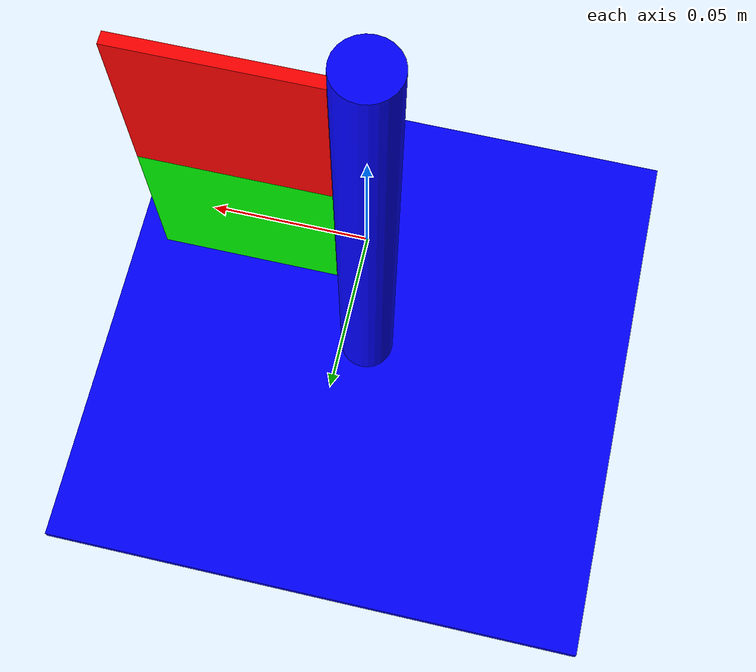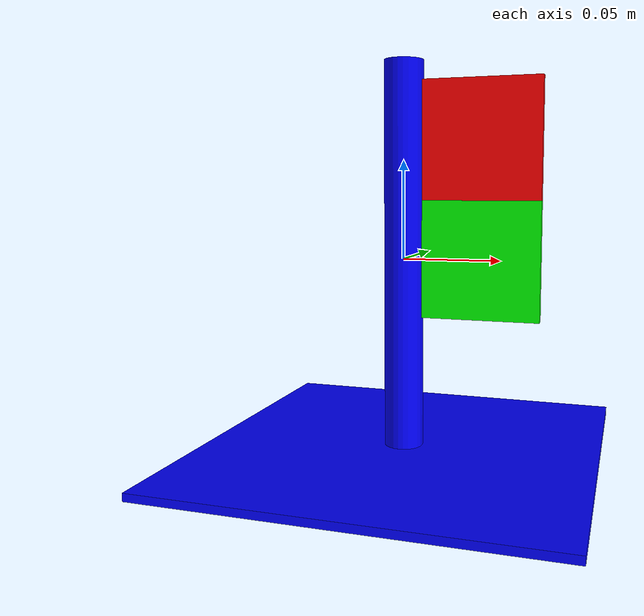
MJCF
<mujoco model="spinning_pole">
  <worldbody>
    <body>
      <body name="collision">
        <geom name="spinningpole_base" euler="0 0 0" pos="0.0 0 -0.1" size="0.1 0.1 0.002"  solimp="0.998 0.998 0.001" solref="0.02 1" density="1000"  type="box" friction="0.95 0.3 0.2" rgba="0 0 1 1"  group="1" contype="1" conaffinity="1" condim="4"/>
        <geom name="spinningpole" euler="0 0 0" pos="0 0 0" size="0.01 0.1" solimp="0.998 0.998 0.001" solref="0.02 1" density="10000000"  type="cylinder" friction="0.95 0.3 0.2" rgba="0 0 1 1"  group="1" contype="1" conaffinity="1" condim="4"/>
        <body>
          <joint axis="0 0 1" name="hinge" pos="0.0 0 0" range="0 0" type="hinge" damping=".001"/>
          <geom name="g_tile" euler="0 0 0" pos="0.04 0 0.0" size="0.03 0.002 0.03 "  solimp="0.998 0.998 0.001" solref="0.02 1" density="1"  type="box" friction="0.95 0.3 0.2" rgba="0 1 0 1"  group="1" contype="1" conaffinity="1" condim="4"/>
        </body>
        <body>
          <joint axis="0 0 1" name="hinge2" pos="0.0 0 0" range="0 0" type="hinge" damping=".001"/>
          <geom name="r_tile" euler="0 0 0" pos="0.04 0 0.06" size="0.03 0.002 0.03 "  solimp="0.998 0.998 0.001" solref="0.02 1" density="1"  type="box" friction="0.95 0.3 0.2" rgba="1 0 0 1"  group="1" contype="1" conaffinity="1" condim="4"/>
        </body>
      </body>
      <site name="bottom_site" pos="0 0 -0.1" rgba="0 0 0 0" size="0.005"/>
      <site name="top_site" pos="0 0 0.1" rgba="0 0 0 0" size="0.005"/>
      <site name="horizontal_radius_site" pos="0.0 0 0" rgba="0 0 0 0" size="0.1"/>
    </body>
  </worldbody>
</mujoco>
